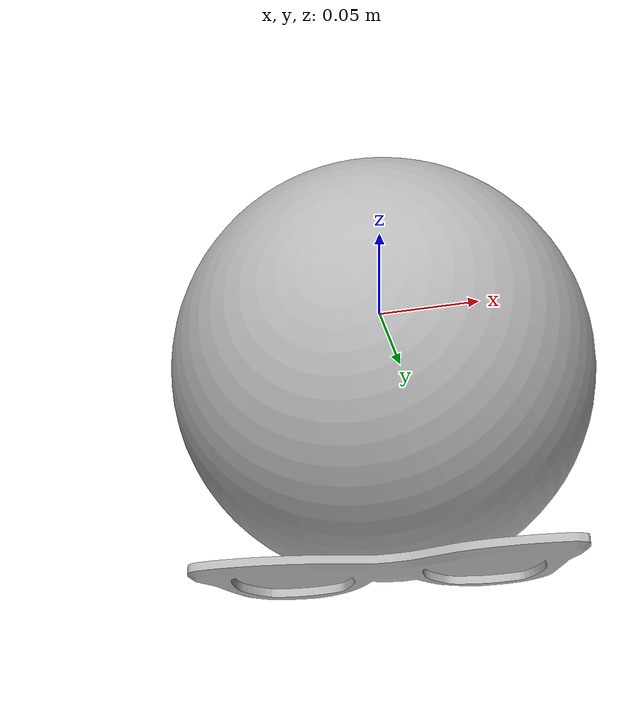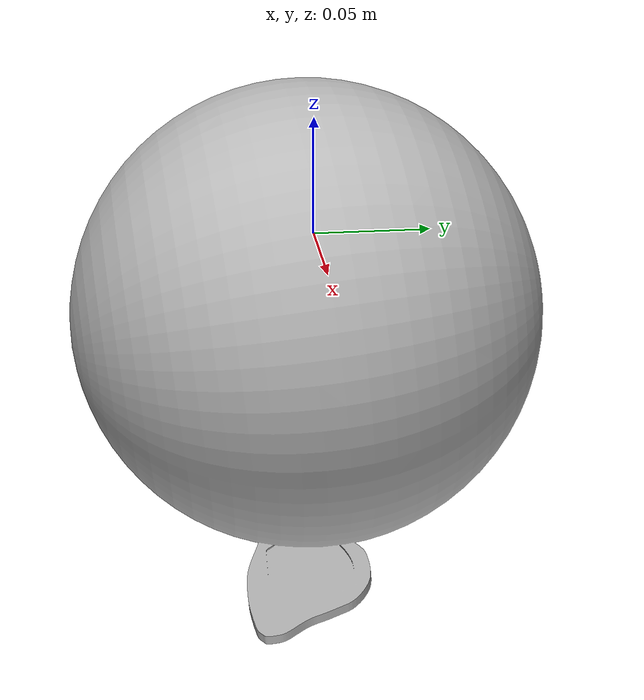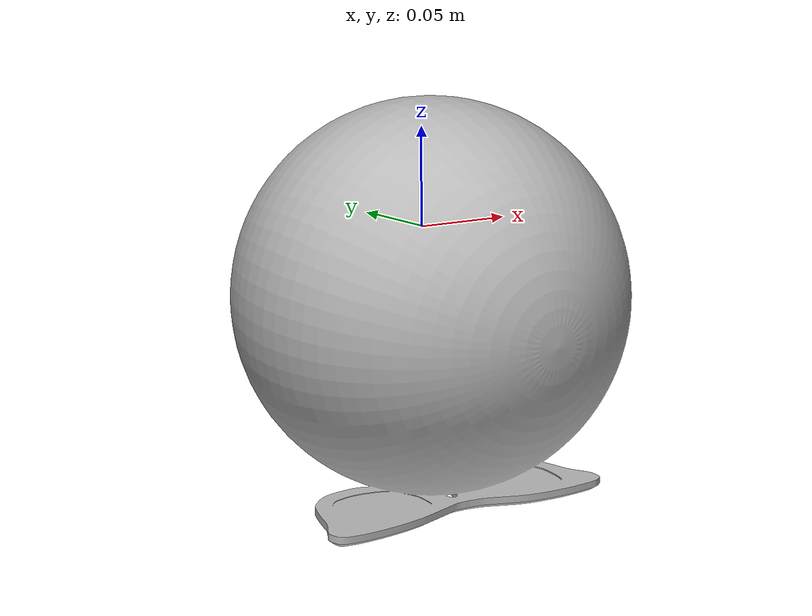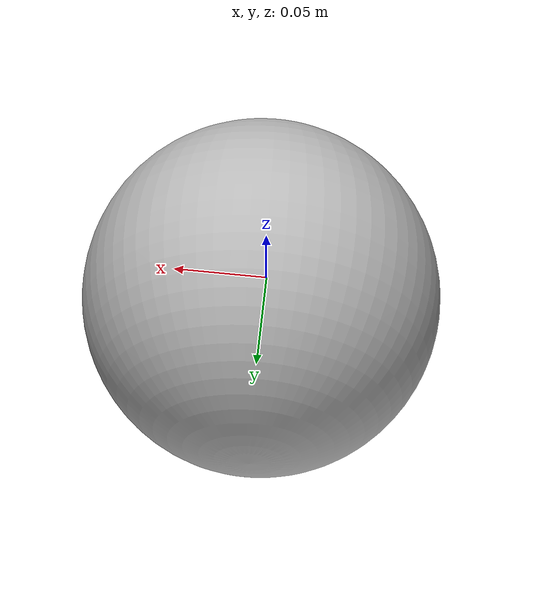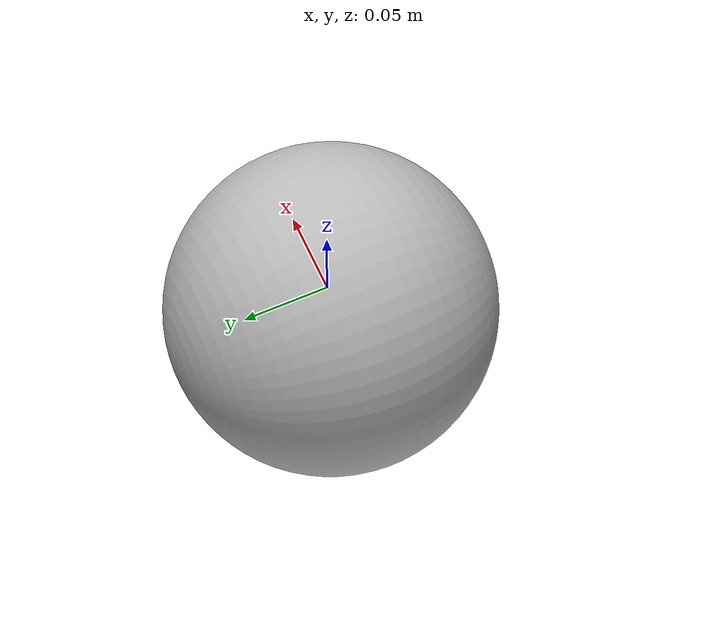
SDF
<?xml version='1.0'?>
<sdf version='1.5'>
  <model name='wrs_fcsc_emoticon_sunglasses'>
    <static>1</static>
    <link name='link'>
      <inertial>
	<pose frame=''>0 0 0 0 -0 0</pose>
        <mass>1</mass>
        <inertia>
          <ixx>0.166667</ixx>
          <ixy>0</ixy>
          <ixz>0</ixz>
          <iyy>0.166667</iyy>
          <iyz>0</iyz>
          <izz>0.166667</izz>
        </inertia>
      </inertial>
      <visual name='visual'>
        <geometry>
          <mesh>
            <uri>model://wrs_fcsc_emoticon_sunglasses/meshes/wrs_fcsc_emoticon_sunglasses.dae</uri>
          </mesh>
        </geometry>
      </visual>
      <collision name='collision'>
        <geometry>
          <mesh>
            <uri>model://wrs_fcsc_emoticon_sunglasses/meshes/wrs_fcsc_emoticon_sunglasses.dae</uri>
          </mesh>
        </geometry>
      </collision>
    </link>
  </model>
</sdf>
